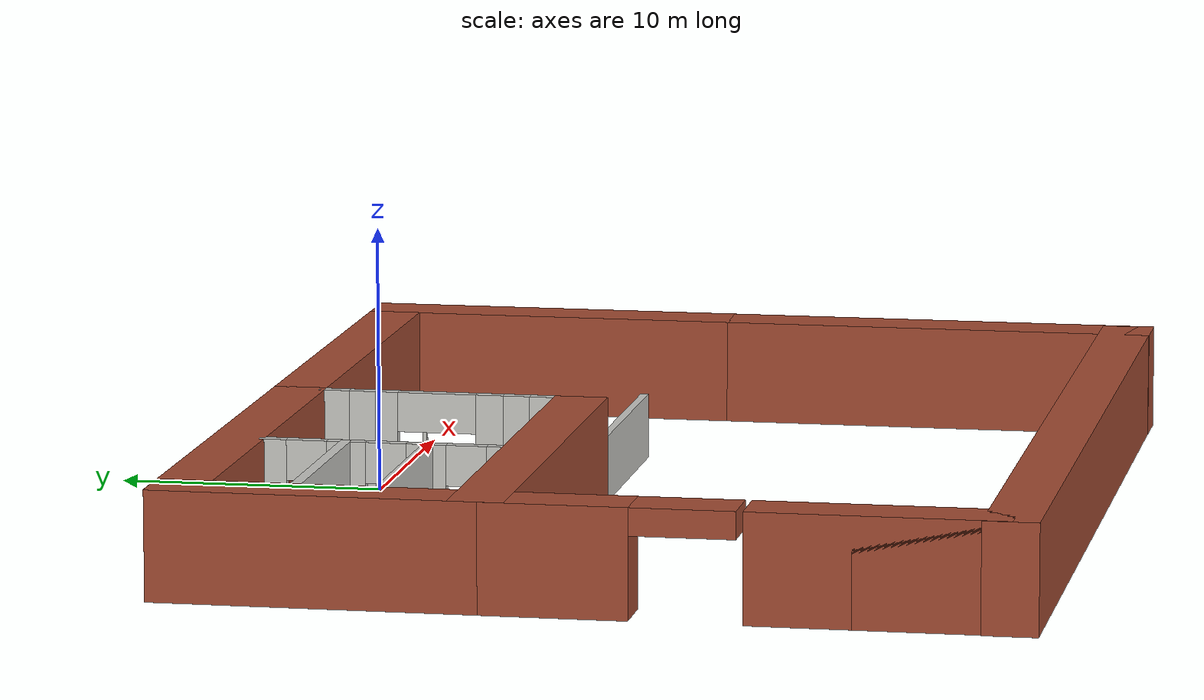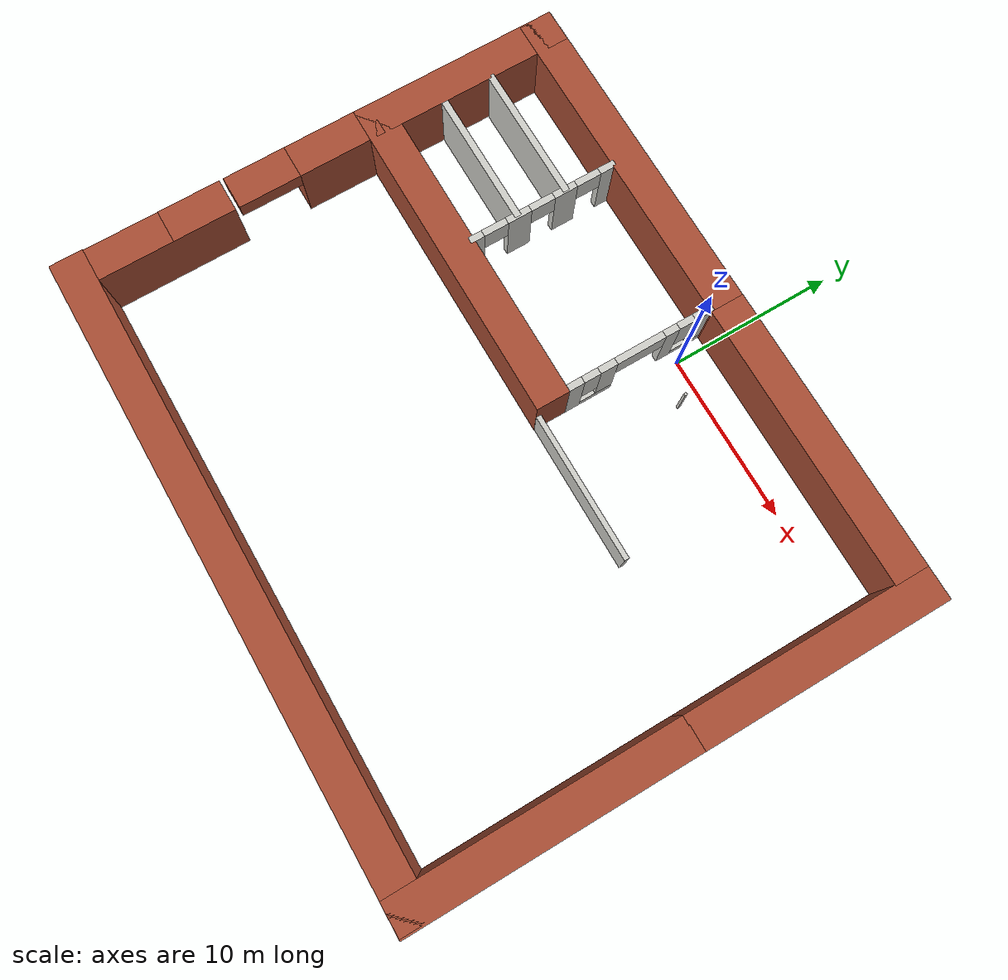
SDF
<?xml version='1.0'?>
<sdf version='1.6'>
  <model name='bunker'>
    <pose frame=''>-1.36176 -11.823 0 0 -0 0</pose>
    <link name='Wall_1'>
      <collision name='Wall_1_Collision'>
        <geometry>
          <box>
            <size>0.15 0.15 2.5</size>
          </box>
        </geometry>
        <pose frame=''>0 0 1.25 0 -0 0</pose>
      </collision>
      <visual name='Wall_1_Visual'>
        <pose frame=''>0 0 1.25 0 -0 0</pose>
        <geometry>
          <box>
            <size>0.15 0.15 2.5</size>
          </box>
        </geometry>
        <material>
          <script>
            <uri>file://media/materials/scripts/gazebo.material</uri>
            <name>Gazebo/CeilingTiled</name>
          </script>
          <ambient>1 1 1 1</ambient>
        </material>
        <meta>
          <layer>0</layer>
        </meta>
      </visual>
      <pose frame=''>3.54093 10.5161 0 0 -0 0</pose>
    </link>
    <link name='Wall_13'>
      <collision name='Wall_13_Collision'>
        <geometry>
          <box>
            <size>12.7691 2 4</size>
          </box>
        </geometry>
        <pose frame=''>0 0 2 0 -0 0</pose>
      </collision>
      <visual name='Wall_13_Visual'>
        <pose frame=''>0 0 2 0 -0 0</pose>
        <geometry>
          <box>
            <size>12.7691 2 4</size>
          </box>
        </geometry>
        <material>
          <script>
            <uri>file://media/materials/scripts/gazebo.material</uri>
            <name>Gazebo/Bricks</name>
          </script>
          <ambient>1 1 1 1</ambient>
        </material>
        <meta>
          <layer>0</layer>
        </meta>
      </visual>
      <pose frame=''>-18.3542 9.29855 0 0 0 -1.5708</pose>
    </link>
    <link name='Wall_34'>
      <collision name='Wall_34_Collision'>
        <geometry>
          <box>
            <size>20 2 4</size>
          </box>
        </geometry>
        <pose frame=''>0 0 2 0 -0 0</pose>
      </collision>
      <visual name='Wall_34_Visual'>
        <pose frame=''>0 0 2 0 -0 0</pose>
        <geometry>
          <box>
            <size>20 2 4</size>
          </box>
        </geometry>
        <material>
          <script>
            <uri>file://media/materials/scripts/gazebo.material</uri>
            <name>Gazebo/Bricks</name>
          </script>
          <ambient>1 1 1 1</ambient>
        </material>
        <meta>
          <layer>0</layer>
        </meta>
      </visual>
      <pose frame=''>-9.28495 14.6918 0 0 -0 0</pose>
    </link>
    <link name='Wall_39'>
      <collision name='Wall_39_Collision'>
        <geometry>
          <box>
            <size>20 2 4</size>
          </box>
        </geometry>
        <pose frame=''>0 0 2 0 -0 0</pose>
      </collision>
      <visual name='Wall_39_Visual'>
        <pose frame=''>0 0 2 0 -0 0</pose>
        <geometry>
          <box>
            <size>20 2 4</size>
          </box>
        </geometry>
        <material>
          <script>
            <uri>file://media/materials/scripts/gazebo.material</uri>
            <name>Gazebo/Bricks</name>
          </script>
          <ambient>1 1 1 1</ambient>
        </material>
        <meta>
          <layer>0</layer>
        </meta>
      </visual>
      <pose frame=''>-9.35391 3.90468 0 0 -0 0</pose>
    </link>
    <link name='Wall_42'>
      <pose frame=''>-9.36718 9.263 0 0 0 -1.5708</pose>
      <visual name='Wall_42_Visual_0'>
        <pose frame=''>-4.11542 0 2 0 -0 0</pose>
        <geometry>
          <box>
            <size>1.01954 0.4 4</size>
          </box>
        </geometry>
        <material>
          <script>
            <uri>file://media/materials/scripts/gazebo.material</uri>
            <name>Gazebo/CeilingTiled</name>
          </script>
          <ambient>1 1 1 1</ambient>
        </material>
        <meta>
          <layer>0</layer>
        </meta>
      </visual>
      <collision name='Wall_42_Collision_0'>
        <geometry>
          <box>
            <size>1.01954 0.4 4</size>
          </box>
        </geometry>
        <pose frame=''>-4.11542 0 2 0 -0 0</pose>
      </collision>
      <visual name='Wall_42_Visual_1'>
        <pose frame=''>-1.39432 0 2 0 -0 0</pose>
        <geometry>
          <box>
            <size>1.42265 0.4 4</size>
          </box>
        </geometry>
        <material>
          <script>
            <uri>file://media/materials/scripts/gazebo.material</uri>
            <name>Gazebo/CeilingTiled</name>
          </script>
          <ambient>1 1 1 1</ambient>
        </material>
        <meta>
          <layer>0</layer>
        </meta>
      </visual>
      <collision name='Wall_42_Collision_1'>
        <geometry>
          <box>
            <size>1.42265 0.4 4</size>
          </box>
        </geometry>
        <pose frame=''>-1.39432 0 2 0 -0 0</pose>
      </collision>
      <visual name='Wall_42_Visual_2'>
        <pose frame=''>1.55294 0 2 0 -0 0</pose>
        <geometry>
          <box>
            <size>1.47188 0.4 4</size>
          </box>
        </geometry>
        <material>
          <script>
            <uri>file://media/materials/scripts/gazebo.material</uri>
            <name>Gazebo/CeilingTiled</name>
          </script>
          <ambient>1 1 1 1</ambient>
        </material>
        <meta>
          <layer>0</layer>
        </meta>
      </visual>
      <collision name='Wall_42_Collision_2'>
        <geometry>
          <box>
            <size>1.47188 0.4 4</size>
          </box>
        </geometry>
        <pose frame=''>1.55294 0 2 0 -0 0</pose>
      </collision>
      <visual name='Wall_42_Visual_3'>
        <pose frame=''>4.20704 0 2 0 -0 0</pose>
        <geometry>
          <box>
            <size>0.836315 0.4 4</size>
          </box>
        </geometry>
        <material>
          <script>
            <uri>file://media/materials/scripts/gazebo.material</uri>
            <name>Gazebo/CeilingTiled</name>
          </script>
          <ambient>1 1 1 1</ambient>
        </material>
        <meta>
          <layer>0</layer>
        </meta>
      </visual>
      <collision name='Wall_42_Collision_3'>
        <geometry>
          <box>
            <size>0.836315 0.4 4</size>
          </box>
        </geometry>
        <pose frame=''>4.20704 0 2 0 -0 0</pose>
      </collision>
      <visual name='Wall_42_Visual_4'>
        <pose frame=''>-2.85565 0 3.25 0 -0 0</pose>
        <geometry>
          <box>
            <size>1.5 0.4 1.5</size>
          </box>
        </geometry>
        <material>
          <script>
            <uri>file://media/materials/scripts/gazebo.material</uri>
            <name>Gazebo/CeilingTiled</name>
          </script>
          <ambient>1 1 1 1</ambient>
        </material>
        <meta>
          <layer>0</layer>
        </meta>
      </visual>
      <collision name='Wall_42_Collision_4'>
        <geometry>
          <box>
            <size>1.5 0.4 1.5</size>
          </box>
        </geometry>
        <pose frame=''>-2.85565 0 3.25 0 -0 0</pose>
      </collision>
      <visual name='Wall_42_Visual_5'>
        <pose frame=''>0.067002 0 3.25 0 -0 0</pose>
        <geometry>
          <box>
            <size>1.5 0.4 1.5</size>
          </box>
        </geometry>
        <material>
          <script>
            <uri>file://media/materials/scripts/gazebo.material</uri>
            <name>Gazebo/CeilingTiled</name>
          </script>
          <ambient>1 1 1 1</ambient>
        </material>
        <meta>
          <layer>0</layer>
        </meta>
      </visual>
      <collision name='Wall_42_Collision_5'>
        <geometry>
          <box>
            <size>1.5 0.4 1.5</size>
          </box>
        </geometry>
        <pose frame=''>0.067002 0 3.25 0 -0 0</pose>
      </collision>
      <visual name='Wall_42_Visual_6'>
        <pose frame=''>3.03888 0 3.25 0 -0 0</pose>
        <geometry>
          <box>
            <size>1.5 0.4 1.5</size>
          </box>
        </geometry>
        <material>
          <script>
            <uri>file://media/materials/scripts/gazebo.material</uri>
            <name>Gazebo/CeilingTiled</name>
          </script>
          <ambient>1 1 1 1</ambient>
        </material>
        <meta>
          <layer>0</layer>
        </meta>
      </visual>
      <collision name='Wall_42_Collision_6'>
        <geometry>
          <box>
            <size>1.5 0.4 1.5</size>
          </box>
        </geometry>
        <pose frame=''>3.03888 0 3.25 0 -0 0</pose>
      </collision>
    </link>
    <link name='Wall_44'>
      <collision name='Wall_44_Collision'>
        <geometry>
          <box>
            <size>8.24988 0.4 4</size>
          </box>
        </geometry>
        <pose frame=''>0 0 2 0 -0 0</pose>
      </collision>
      <visual name='Wall_44_Visual'>
        <pose frame=''>0 0 2 0 -0 0</pose>
        <geometry>
          <box>
            <size>8.24988 0.4 4</size>
          </box>
        </geometry>
        <material>
          <script>
            <uri>file://media/materials/scripts/gazebo.material</uri>
            <name>Gazebo/CeilingTiled</name>
          </script>
          <ambient>1 1 1 1</ambient>
        </material>
        <meta>
          <layer>0</layer>
        </meta>
      </visual>
      <pose frame=''>-13.3842 10.704 0 0 -0 3.14159</pose>
    </link>
    <link name='Wall_46'>
      <collision name='Wall_46_Collision'>
        <geometry>
          <box>
            <size>8.25006 0.4 4</size>
          </box>
        </geometry>
        <pose frame=''>0 0 2 0 -0 0</pose>
      </collision>
      <visual name='Wall_46_Visual'>
        <pose frame=''>0 0 2 0 -0 0</pose>
        <geometry>
          <box>
            <size>8.25006 0.4 4</size>
          </box>
        </geometry>
        <material>
          <script>
            <uri>file://media/materials/scripts/gazebo.material</uri>
            <name>Gazebo/CeilingTiled</name>
          </script>
          <ambient>1 1 1 1</ambient>
        </material>
        <meta>
          <layer>0</layer>
        </meta>
      </visual>
      <pose frame=''>-13.4072 7.65 0 0 -0 0</pose>
    </link>
    <link name='Wall_48'>
      <collision name='Wall_48_Collision'>
        <geometry>
          <box>
            <size>16.85 2 4</size>
          </box>
        </geometry>
        <pose frame=''>0 0 2 0 -0 0</pose>
      </collision>
      <visual name='Wall_48_Visual'>
        <pose frame=''>0 0 2 0 -0 0</pose>
        <geometry>
          <box>
            <size>16.85 2 4</size>
          </box>
        </geometry>
        <material>
          <script>
            <uri>file://media/materials/scripts/gazebo.material</uri>
            <name>Gazebo/Bricks</name>
          </script>
          <ambient>1 1 1 1</ambient>
        </material>
        <meta>
          <layer>0</layer>
        </meta>
      </visual>
      <pose frame=''>9.07176 14.697 0 0 -0 0</pose>
    </link>
    <link name='Wall_50'>
      <pose frame=''>0.443943 9.289 0 0 -0 1.5708</pose>
      <visual name='Wall_50_Visual_0'>
        <pose frame=''>-4.04493 0 2 0 -0 0</pose>
        <geometry>
          <box>
            <size>1.16014 0.4 4</size>
          </box>
        </geometry>
        <material>
          <script>
            <uri>file://media/materials/scripts/gazebo.material</uri>
            <name>Gazebo/CeilingTiled</name>
          </script>
          <ambient>1 1 1 1</ambient>
        </material>
        <meta>
          <layer>0</layer>
        </meta>
      </visual>
      <collision name='Wall_50_Collision_0'>
        <geometry>
          <box>
            <size>1.16014 0.4 4</size>
          </box>
        </geometry>
        <pose frame=''>-4.04493 0 2 0 -0 0</pose>
      </collision>
      <visual name='Wall_50_Visual_1'>
        <pose frame=''>2.01712 0 2 0 -0 0</pose>
        <geometry>
          <box>
            <size>0.863411 0.4 4</size>
          </box>
        </geometry>
        <material>
          <script>
            <uri>file://media/materials/scripts/gazebo.material</uri>
            <name>Gazebo/CeilingTiled</name>
          </script>
          <ambient>1 1 1 1</ambient>
        </material>
        <meta>
          <layer>0</layer>
        </meta>
      </visual>
      <collision name='Wall_50_Collision_1'>
        <geometry>
          <box>
            <size>0.863411 0.4 4</size>
          </box>
        </geometry>
        <pose frame=''>2.01712 0 2 0 -0 0</pose>
      </collision>
      <visual name='Wall_50_Visual_2'>
        <pose frame=''>-2.43972 0 0.25 0 -0 0</pose>
        <geometry>
          <box>
            <size>2.05028 0.4 0.5</size>
          </box>
        </geometry>
        <material>
          <script>
            <uri>file://media/materials/scripts/gazebo.material</uri>
            <name>Gazebo/CeilingTiled</name>
          </script>
          <ambient>1 1 1 1</ambient>
        </material>
        <meta>
          <layer>0</layer>
        </meta>
      </visual>
      <collision name='Wall_50_Collision_2'>
        <geometry>
          <box>
            <size>2.05028 0.4 0.5</size>
          </box>
        </geometry>
        <pose frame=''>-2.43972 0 0.25 0 -0 0</pose>
      </collision>
      <visual name='Wall_50_Visual_3'>
        <pose frame=''>3.53691 0 0.25 0 -0 0</pose>
        <geometry>
          <box>
            <size>2.17617 0.4 0.5</size>
          </box>
        </geometry>
        <material>
          <script>
            <uri>file://media/materials/scripts/gazebo.material</uri>
            <name>Gazebo/CeilingTiled</name>
          </script>
          <ambient>1 1 1 1</ambient>
        </material>
        <meta>
          <layer>0</layer>
        </meta>
      </visual>
      <collision name='Wall_50_Collision_3'>
        <geometry>
          <box>
            <size>2.17617 0.4 0.5</size>
          </box>
        </geometry>
        <pose frame=''>3.53691 0 0.25 0 -0 0</pose>
      </collision>
      <visual name='Wall_50_Visual_4'>
        <pose frame=''>-1.93972 0 2.25 0 -0 0</pose>
        <geometry>
          <box>
            <size>1.05028 0.4 3.5</size>
          </box>
        </geometry>
        <material>
          <script>
            <uri>file://media/materials/scripts/gazebo.material</uri>
            <name>Gazebo/CeilingTiled</name>
          </script>
          <ambient>1 1 1 1</ambient>
        </material>
        <meta>
          <layer>0</layer>
        </meta>
      </visual>
      <collision name='Wall_50_Collision_4'>
        <geometry>
          <box>
            <size>1.05028 0.4 3.5</size>
          </box>
        </geometry>
        <pose frame=''>-1.93972 0 2.25 0 -0 0</pose>
      </collision>
      <visual name='Wall_50_Visual_5'>
        <pose frame=''>-1.93972 0 2.25 0 -0 0</pose>
        <geometry>
          <box>
            <size>1.05028 0.4 3.5</size>
          </box>
        </geometry>
        <material>
          <script>
            <uri>file://media/materials/scripts/gazebo.material</uri>
            <name>Gazebo/CeilingTiled</name>
          </script>
          <ambient>1 1 1 1</ambient>
        </material>
        <meta>
          <layer>0</layer>
        </meta>
      </visual>
      <collision name='Wall_50_Collision_5'>
        <geometry>
          <box>
            <size>1.05028 0.4 3.5</size>
          </box>
        </geometry>
        <pose frame=''>-1.93972 0 2.25 0 -0 0</pose>
      </collision>
      <visual name='Wall_50_Visual_6'>
        <pose frame=''>4.03691 0 2.25 0 -0 0</pose>
        <geometry>
          <box>
            <size>1.17617 0.4 3.5</size>
          </box>
        </geometry>
        <material>
          <script>
            <uri>file://media/materials/scripts/gazebo.material</uri>
            <name>Gazebo/CeilingTiled</name>
          </script>
          <ambient>1 1 1 1</ambient>
        </material>
        <meta>
          <layer>0</layer>
        </meta>
      </visual>
      <collision name='Wall_50_Collision_6'>
        <geometry>
          <box>
            <size>1.17617 0.4 3.5</size>
          </box>
        </geometry>
        <pose frame=''>4.03691 0 2.25 0 -0 0</pose>
      </collision>
      <visual name='Wall_50_Visual_7'>
        <pose frame=''>-2.96486 0 2.75 0 -0 0</pose>
        <geometry>
          <box>
            <size>1 0.4 2.5</size>
          </box>
        </geometry>
        <material>
          <script>
            <uri>file://media/materials/scripts/gazebo.material</uri>
            <name>Gazebo/CeilingTiled</name>
          </script>
          <ambient>1 1 1 1</ambient>
        </material>
        <meta>
          <layer>0</layer>
        </meta>
      </visual>
      <collision name='Wall_50_Collision_7'>
        <geometry>
          <box>
            <size>1 0.4 2.5</size>
          </box>
        </geometry>
        <pose frame=''>-2.96486 0 2.75 0 -0 0</pose>
      </collision>
      <visual name='Wall_50_Visual_8'>
        <pose frame=''>2.94883 0 2.75 0 -0 0</pose>
        <geometry>
          <box>
            <size>1 0.4 2.5</size>
          </box>
        </geometry>
        <material>
          <script>
            <uri>file://media/materials/scripts/gazebo.material</uri>
            <name>Gazebo/CeilingTiled</name>
          </script>
          <ambient>1 1 1 1</ambient>
        </material>
        <meta>
          <layer>0</layer>
        </meta>
      </visual>
      <collision name='Wall_50_Collision_8'>
        <geometry>
          <box>
            <size>1 0.4 2.5</size>
          </box>
        </geometry>
        <pose frame=''>2.94883 0 2.75 0 -0 0</pose>
      </collision>
      <visual name='Wall_50_Visual_9'>
        <pose frame=''>0.085417 0 3.25 0 -0 0</pose>
        <geometry>
          <box>
            <size>3 0.4 1.5</size>
          </box>
        </geometry>
        <material>
          <script>
            <uri>file://media/materials/scripts/gazebo.material</uri>
            <name>Gazebo/CeilingTiled</name>
          </script>
          <ambient>1 1 1 1</ambient>
        </material>
        <meta>
          <layer>0</layer>
        </meta>
      </visual>
      <collision name='Wall_50_Collision_9'>
        <geometry>
          <box>
            <size>3 0.4 1.5</size>
          </box>
        </geometry>
        <pose frame=''>0.085417 0 3.25 0 -0 0</pose>
      </collision>
      <visual name='Wall_50_Visual_10'>
        <pose frame=''>0.085417 0 3.25 0 -0 0</pose>
        <geometry>
          <box>
            <size>3 0.4 1.5</size>
          </box>
        </geometry>
        <material>
          <script>
            <uri>file://media/materials/scripts/gazebo.material</uri>
            <name>Gazebo/CeilingTiled</name>
          </script>
          <ambient>1 1 1 1</ambient>
        </material>
        <meta>
          <layer>0</layer>
        </meta>
      </visual>
      <collision name='Wall_50_Collision_10'>
        <geometry>
          <box>
            <size>3 0.4 1.5</size>
          </box>
        </geometry>
        <pose frame=''>0.085417 0 3.25 0 -0 0</pose>
      </collision>
    </link>
    <link name='Wall_52'>
      <collision name='Wall_52_Collision'>
        <geometry>
          <box>
            <size>14.6 2 4</size>
          </box>
        </geometry>
        <pose frame=''>0 0 2 0 -0 0</pose>
      </collision>
      <visual name='Wall_52_Visual'>
        <pose frame=''>0 0 2 0 -0 0</pose>
        <geometry>
          <box>
            <size>14.6 2 4</size>
          </box>
        </geometry>
        <material>
          <script>
            <uri>file://media/materials/scripts/gazebo.material</uri>
            <name>Gazebo/Bricks</name>
          </script>
          <ambient>1 1 1 1</ambient>
        </material>
        <meta>
          <layer>0</layer>
        </meta>
      </visual>
      <pose frame=''>18.4248 8.395 0 0 0 -1.5708</pose>
    </link>
    <link name='Wall_54'>
      <collision name='Wall_54_Collision'>
        <geometry>
          <box>
            <size>16.85 2 4</size>
          </box>
        </geometry>
        <pose frame=''>0 0 2 0 -0 0</pose>
      </collision>
      <visual name='Wall_54_Visual'>
        <pose frame=''>0 0 2 0 -0 0</pose>
        <geometry>
          <box>
            <size>16.85 2 4</size>
          </box>
        </geometry>
        <material>
          <script>
            <uri>file://media/materials/scripts/gazebo.material</uri>
            <name>Gazebo/Bricks</name>
          </script>
          <ambient>1 1 1 1</ambient>
        </material>
        <meta>
          <layer>0</layer>
        </meta>
      </visual>
      <pose frame=''>18.4198 -7.272 0 0 0 -1.5708</pose>
    </link>
    <link name='Wall_56'>
      <collision name='Wall_56_Collision'>
        <geometry>
          <box>
            <size>38.75 2 4</size>
          </box>
        </geometry>
        <pose frame=''>0 0 2 0 -0 0</pose>
      </collision>
      <visual name='Wall_56_Visual'>
        <pose frame=''>0 0 2 0 -0 0</pose>
        <geometry>
          <box>
            <size>38.75 2 4</size>
          </box>
        </geometry>
        <material>
          <script>
            <uri>file://media/materials/scripts/gazebo.material</uri>
            <name>Gazebo/Bricks</name>
          </script>
          <ambient>1 1 1 1</ambient>
        </material>
        <meta>
          <layer>0</layer>
        </meta>
      </visual>
      <pose frame=''>-0.049764 -14.6858 0 0 -0 3.14159</pose>
    </link>
    <link name='Wall_58'>
      <pose frame=''>-18.3633 -5.454 0 0 0 -1.5708</pose>
      <visual name='Wall_58_Visual_0'>
        <pose frame=''>-6.64773 0 2 0 -0 0</pose>
        <geometry>
          <box>
            <size>5.30454 2 4</size>
          </box>
        </geometry>
        <material>
          <script>
            <uri>file://media/materials/scripts/gazebo.material</uri>
            <name>Gazebo/Bricks</name>
          </script>
          <ambient>1 1 1 1</ambient>
        </material>
        <meta>
          <layer>0</layer>
        </meta>
      </visual>
      <collision name='Wall_58_Collision_0'>
        <geometry>
          <box>
            <size>5.30454 2 4</size>
          </box>
        </geometry>
        <pose frame=''>-6.64773 0 2 0 -0 0</pose>
      </collision>
      <visual name='Wall_58_Visual_1'>
        <pose frame=''>4.65227 0 2 0 -0 0</pose>
        <geometry>
          <box>
            <size>9.29546 2 4</size>
          </box>
        </geometry>
        <material>
          <script>
            <uri>file://media/materials/scripts/gazebo.material</uri>
            <name>Gazebo/Bricks</name>
          </script>
          <ambient>1 1 1 1</ambient>
        </material>
        <meta>
          <layer>0</layer>
        </meta>
      </visual>
      <collision name='Wall_58_Collision_1'>
        <geometry>
          <box>
            <size>9.29546 2 4</size>
          </box>
        </geometry>
        <pose frame=''>4.65227 0 2 0 -0 0</pose>
      </collision>
      <visual name='Wall_58_Visual_2'>
        <pose frame=''>6.53442 0 2 0 -0 0</pose>
        <geometry>
          <box>
            <size>5.53116 2 4</size>
          </box>
        </geometry>
        <material>
          <script>
            <uri>file://media/materials/scripts/gazebo.material</uri>
            <name>Gazebo/Bricks</name>
          </script>
          <ambient>1 1 1 1</ambient>
        </material>
        <meta>
          <layer>0</layer>
        </meta>
      </visual>
      <collision name='Wall_58_Collision_2'>
        <geometry>
          <box>
            <size>5.53116 2 4</size>
          </box>
        </geometry>
        <pose frame=''>6.53442 0 2 0 -0 0</pose>
      </collision>
      <visual name='Wall_58_Visual_3'>
        <pose frame=''>-2.11331 0 3.5 0 -0 0</pose>
        <geometry>
          <box>
            <size>3.7643 2 1</size>
          </box>
        </geometry>
        <material>
          <script>
            <uri>file://media/materials/scripts/gazebo.material</uri>
            <name>Gazebo/Bricks</name>
          </script>
          <ambient>1 1 1 1</ambient>
        </material>
        <meta>
          <layer>0</layer>
        </meta>
      </visual>
      <collision name='Wall_58_Collision_3'>
        <geometry>
          <box>
            <size>3.7643 2 1</size>
          </box>
        </geometry>
        <pose frame=''>-2.11331 0 3.5 0 -0 0</pose>
      </collision>
    </link>
    <link name='Wall_60'>
      <collision name='Wall_60_Collision'>
        <geometry>
          <box>
            <size>8.9 0.3 2.5</size>
          </box>
        </geometry>
        <pose frame=''>0 0 1.25 0 -0 0</pose>
      </collision>
      <visual name='Wall_60_Visual'>
        <pose frame=''>0 0 1.25 0 -0 0</pose>
        <geometry>
          <box>
            <size>8.9 0.3 2.5</size>
          </box>
        </geometry>
        <material>
          <script>
            <uri>file://media/materials/scripts/gazebo.material</uri>
            <name>Gazebo/CeilingTiled</name>
          </script>
          <ambient>1 1 1 1</ambient>
        </material>
        <meta>
          <layer>0</layer>
        </meta>
      </visual>
      <pose frame=''>5.07282 3.079 0 0 -0 0</pose>
    </link>
    <static>1</static>
  </model>
</sdf>
